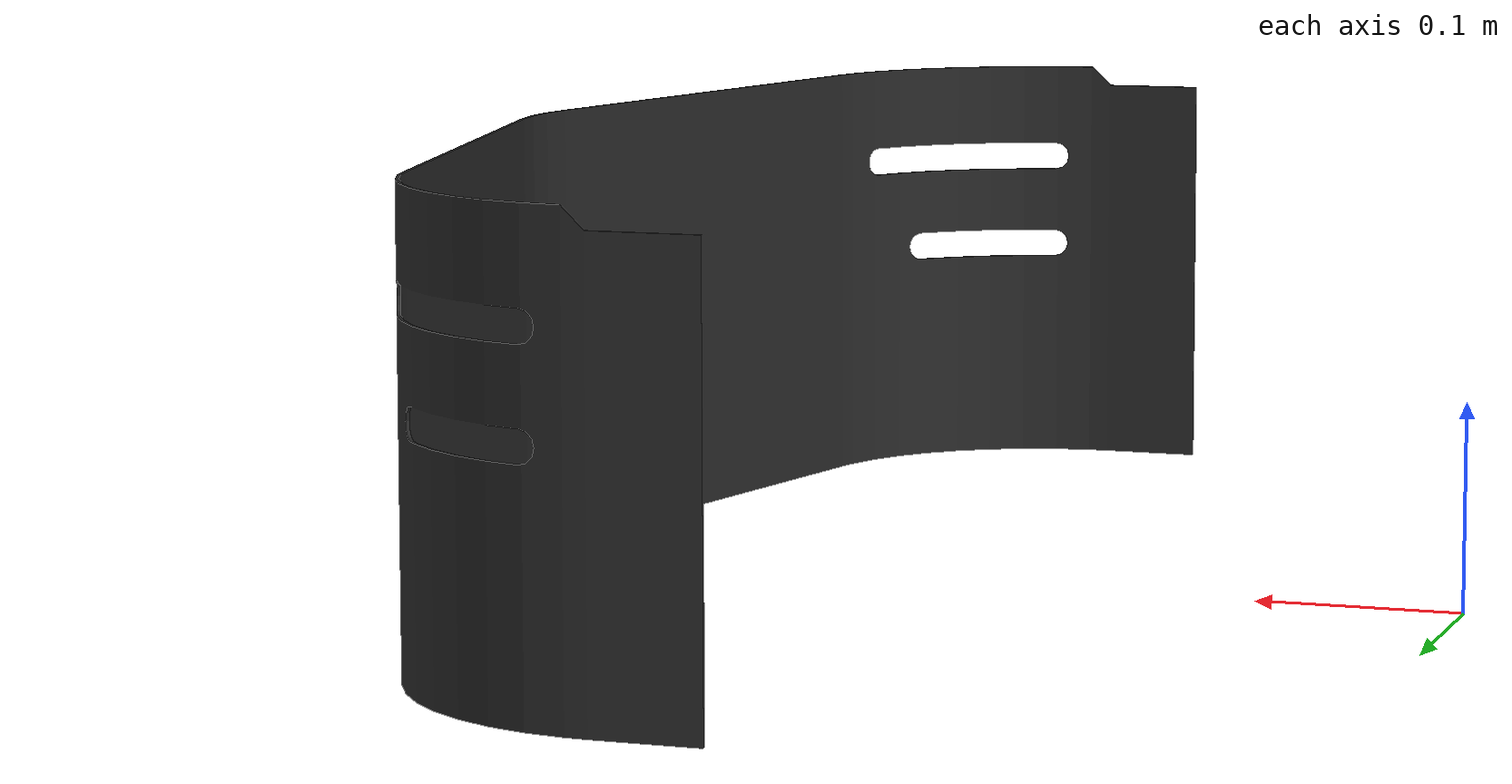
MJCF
<mujoco model="end-cover">
  <default>
    <default class="visual">
      <geom group="2" type="mesh" contype="0" conaffinity="0"/>
    </default>
    <default class="collision">
      <geom group="3" type="mesh"/>
    </default>
  </default>
  <asset>
    <material name="mtl_end-cover" specular="0.20000000000000004" shininess="1.0" rgba="0.14901961 0.14901961 0.14901961 1.0"/>
    <mesh file="end-cover.obj"/>
  </asset>
  <worldbody>
    <body name="end-cover">
      <geom material="mtl_end-cover" mesh="end-cover" class="visual"/>
      <geom mesh="end-cover" class="collision"/>
    </body>
  </worldbody>
</mujoco>
